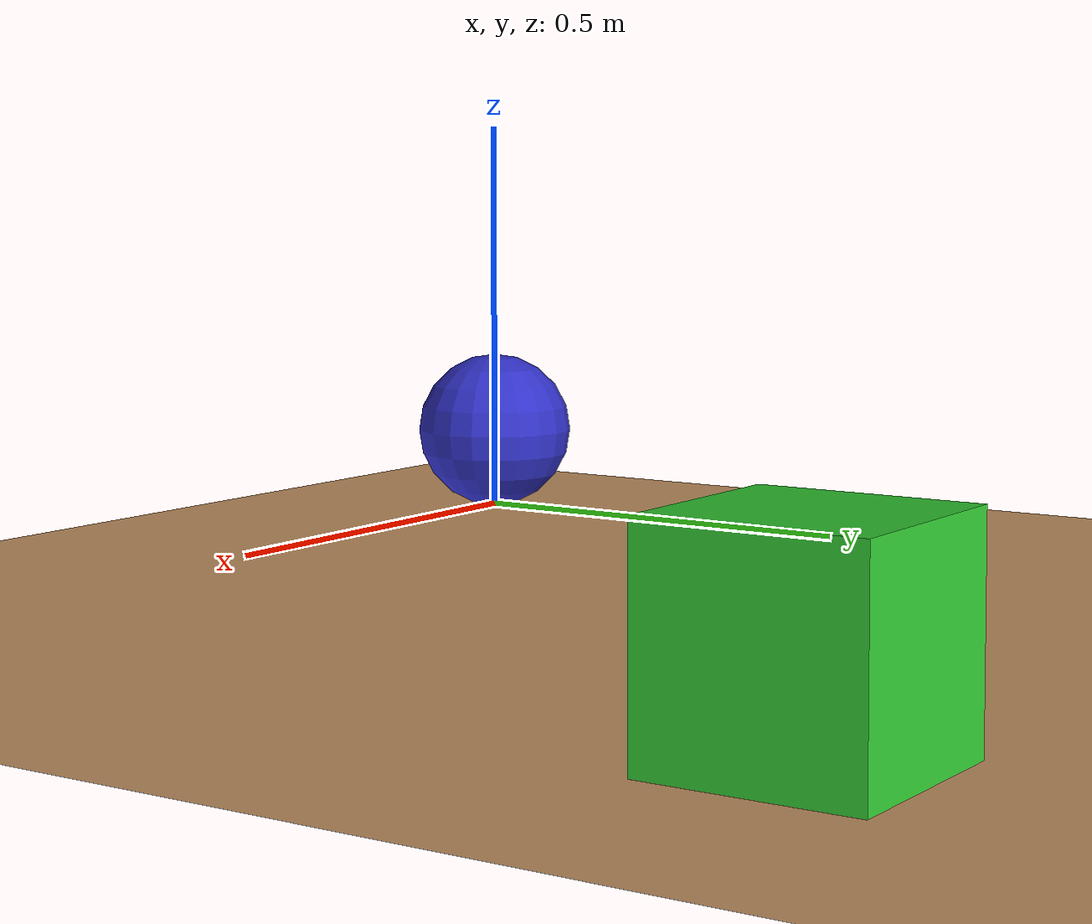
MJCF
<mujoco model="nursery">
  <compiler angle="degree" coordinate="local" inertiafromgeom="true"/>

  <option integrator="RK4" timestep="0.01"/>

  <default>
    <joint armature="1" damping="1" limited="true"/>
    <geom conaffinity="0" condim="3" density="5.0" friction="1 0.5 0.5" margin="0.01" rgba="0.8 0.6 0.4 1"/>
  </default>

  <worldbody>
    <!-- Arena Floor -->
    <geom name="floor" pos="0 0 0" size="2 2 0.1" type="plane" conaffinity="1" condim="3" material="MatPlane"/>

    <!-- Light Source -->
    <light diffuse=".5 .5 .5" pos="0 0 5" dir="0 0 -1"/>

    <!-- Quark's Body (Agent) -->
    <body name="agent" pos="0 0 0.1">
      <joint type="free" limited="false"/>
      <geom name="agent_geom" type="sphere" size="0.1" rgba="0.2 0.2 0.8 1" mass="1"/>
      <!-- This will allow us to read the agent's position easily -->
      <site name="agent_site" pos="0 0 0" size="0.01"/>
    </body>

    <!-- Goal Object -->
    <body name="goal" pos="1 1 0.1">
      <joint type="free" limited="false"/>
      <geom name="goal_geom" type="box" size="0.1 0.1 0.1" rgba="0.2 0.8 0.2 1" mass="1000"/>
       <!-- This will allow us to read the goal's position easily -->
      <site name="goal_site" pos="0 0 0" size="0.01"/>
    </body>

  </worldbody>

  <asset>
    <texture type="skybox" builtin="gradient" rgb1="0.4 0.6 0.8" rgb2="0 0 0" width="32" height="32"/>
    <texture name="texplane" type="2d" builtin="checker" rgb1=".2 .3 .4" rgb2=".1 0.15 0.2" width="512" height="512"/>
    <material name="MatPlane" reflectance="0.5" texture="texplane" texrepeat="1 1" texuniform="true"/>
  </asset>

</mujoco>
